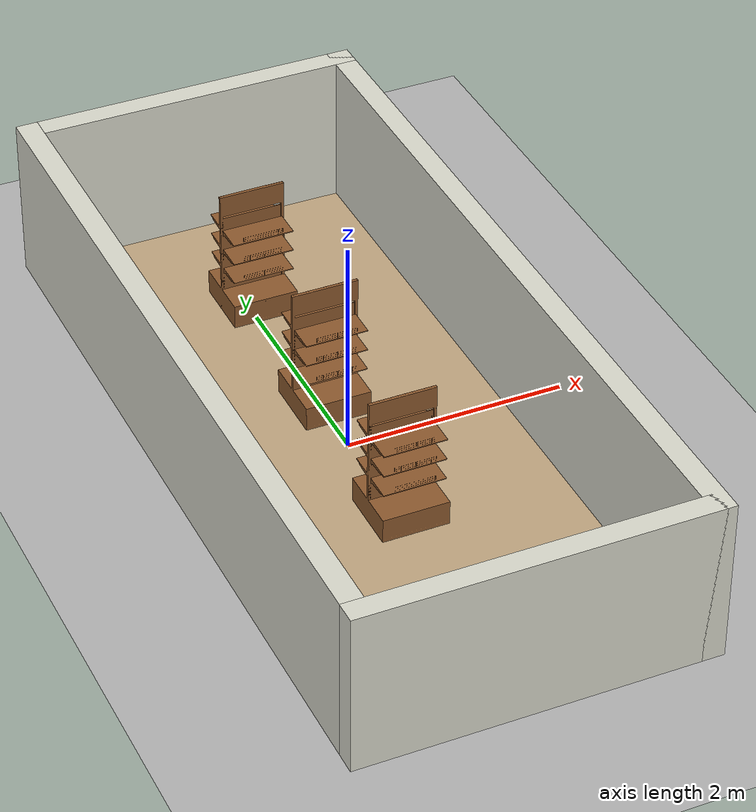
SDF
<sdf version="1.7">
 <world name="default">
  <plugin filename="gz-sim-physics-system" name="gz::sim::systems::Physics"/>
  <plugin filename="gz-sim-user-commands-system" name="gz::sim::systems::UserCommands"/>
  <plugin filename="gz-sim-scene-broadcaster-system" name="gz::sim::systems::SceneBroadcaster"/>
  <plugin filename="gz-sim-sensors-system" name="gz::sim::systems::Sensors">
   <render_engine>ogre2</render_engine>
  </plugin>
  <plugin filename="gz-sim-imu-system" name="gz::sim::systems::Imu"/>
  <light name="sun" type="directional">
   <pose>0 0 10 0 -0 0</pose>
   <diffuse>0.8 0.8 0.8 1</diffuse>
   <specular>0.2 0.2 0.2 1</specular>
   <attenuation>
    <range>1000</range>
    <constant>0.9</constant>
    <linear>0.01</linear>
    <quadratic>0.001</quadratic>
   </attenuation>
   <direction>-0.5 0.1 -0.9</direction>
   <spot><inner_angle>0</inner_angle><outer_angle>0</outer_angle><falloff>0</falloff></spot>
  </light>
  <model name="ground_plane">
   <static>1</static>
   <link name="link">
    <collision name="collision">
     <geometry><plane><normal>0 0 1</normal><size>100 100</size></plane></geometry>
     <surface>
      <contact><collide_bitmask>65535</collide_bitmask></contact>
      <friction><ode><mu>100</mu><mu2>50</mu2></ode></friction>
     </surface>
    </collision>
    <visual name="visual">
     <cast_shadows>0</cast_shadows>
     <geometry><plane><normal>0 0 1</normal><size>100 100</size></plane></geometry>
     <material>
      <ambient>0.3 0.3 0.3 1</ambient>
      <diffuse>0.7 0.7 0.7 1</diffuse>
      <specular>0.01 0.01 0.01 1</specular>
     </material>
    </visual>
   </link>
  </model>
  <gravity>0 0 -9.8</gravity>
  <magnetic_field>6e-06 2.3e-05 -4.2e-05</magnetic_field>
  <atmosphere type="adiabatic"/>
  <physics type="ode">
   <max_step_size>0.001</max_step_size>
   <real_time_factor>1</real_time_factor>
   <real_time_update_rate>1000</real_time_update_rate>
  </physics>
  <scene><ambient>0.4 0.4 0.4 1</ambient><background>0.7 0.7 0.7 1</background><shadows>1</shadows></scene>
  <audio><device>default</device></audio>
  <spherical_coordinates>
   <surface_model>EARTH_WGS84</surface_model>
   <latitude_deg>0</latitude_deg>
   <longitude_deg>0</longitude_deg>
   <elevation>0</elevation>
   <heading_deg>0</heading_deg>
  </spherical_coordinates>
  <model name="SupermarketWalls">
   <link name="Floor_0">
    <collision name="Floor_0_Collision">
     <geometry><box><size>3 7 0.1</size></box></geometry>
     <pose>0 0 0.05 0 -0 0</pose>
    </collision>
    <visual name="Floor_0_Visual">
     <pose>0 0 0.05 0 -0 0</pose>
     <geometry><box><size>3 7 0.1</size></box></geometry>
     <material>
      <ambient>0.35 0.30 0.22 1</ambient>
      <diffuse>0.75 0.65 0.50 1</diffuse>
      <specular>0.02 0.02 0.02 1</specular>
     </material>
     <meta><layer>0</layer></meta>
    </visual>
   </link>
   <link name="Wall_14">
    <collision name="Wall_14_Collision">
     <geometry><box><size>3.2 0.2 1.5</size></box></geometry>
     <pose>0 0 0.75 0 -0 0</pose>
    </collision>
    <visual name="Wall_14_Visual">
     <pose>0 0 0.75 0 -0 0</pose>
     <geometry><box><size>3.2 0.2 1.5</size></box></geometry>
     <material>
      <ambient>0.35 0.35 0.32 1</ambient>
      <diffuse>0.85 0.85 0.80 1</diffuse>
      <specular>0.02 0.02 0.02 1</specular>
     </material>
     <meta><layer>0</layer></meta>
    </visual>
    <pose>0 3.5 0 0 -0 0</pose>
   </link>
   <link name="Wall_17">
    <collision name="Wall_17_Collision">
     <geometry><box><size>7.2 0.2 1.5</size></box></geometry>
     <pose>0 0 0.75 0 -0 0</pose>
    </collision>
    <visual name="Wall_17_Visual">
     <pose>0 0 0.75 0 -0 0</pose>
     <geometry><box><size>7.2 0.2 1.5</size></box></geometry>
     <material>
      <ambient>0.35 0.35 0.32 1</ambient>
      <diffuse>0.85 0.85 0.80 1</diffuse>
      <specular>0.02 0.02 0.02 1</specular>
     </material>
     <meta><layer>0</layer></meta>
    </visual>
    <pose>1.5 0 0 0 -0 -1.5708</pose>
   </link>
   <link name="Wall_19">
    <collision name="Wall_19_Collision">
     <geometry><box><size>3.2 0.2 1.5</size></box></geometry>
     <pose>0 0 0.75 0 -0 0</pose>
    </collision>
    <visual name="Wall_19_Visual">
     <pose>0 0 0.75 0 -0 0</pose>
     <geometry><box><size>3.2 0.2 1.5</size></box></geometry>
     <material>
      <ambient>0.35 0.35 0.32 1</ambient>
      <diffuse>0.85 0.85 0.80 1</diffuse>
      <specular>0.02 0.02 0.02 1</specular>
     </material>
     <meta><layer>0</layer></meta>
    </visual>
    <pose>0 -3.5 0 0 -0 0</pose>
   </link>
   <link name="Wall_9">
    <collision name="Wall_9_Collision">
     <geometry><box><size>7.2 0.2 1.5</size></box></geometry>
     <pose>0 0 0.75 0 -0 0</pose>
    </collision>
    <visual name="Wall_9_Visual">
     <pose>0 0 0.75 0 -0 0</pose>
     <geometry><box><size>7.2 0.2 1.5</size></box></geometry>
     <material>
      <ambient>0.35 0.35 0.32 1</ambient>
      <diffuse>0.85 0.85 0.80 1</diffuse>
      <specular>0.02 0.02 0.02 1</specular>
     </material>
     <meta><layer>0</layer></meta>
    </visual>
    <pose>-1.5 0 0 0 -0 1.5708</pose>
   </link>
   <static>1</static>
  </model>
  <model name="markers_supermarket_real">
   <pose>2e-06 0.5 0.419995 8e-06 6e-06 0</pose>
   <link name="link">
    <inertial>
     <mass>1</mass>
     <inertia>
      <ixx>0.166667</ixx>
      <ixy>0</ixy>
      <ixz>0</ixz>
      <iyy>0.166667</iyy>
      <iyz>0</iyz>
      <izz>0.166667</izz>
     </inertia>
    </inertial>
    <visual name="visual">
     <geometry>
      <mesh>
       <uri>model://Supermarket/markers_supermarket_real/meshes/estanteria.stl</uri>
       <scale>0.001 0.001 0.001</scale>
      </mesh>
     </geometry>
     <material>
      <shader type="pixel"><normal_map>__default__</normal_map></shader>
      <ambient>0.25 0.15 0.08 1</ambient>
      <diffuse>0.55 0.35 0.18 1</diffuse>
      <specular>0.02 0.02 0.02 1</specular>
      <emissive>0 0 0 1</emissive>
     </material>
     <pose>-0.3 0.3 -0.3 1.58 -0 0</pose>
    </visual>
    <collision name="collision">
     <pose>0 0 0.23 0 -0 0</pose>
     <geometry><box><size>0.61 0.61 1.1</size></box></geometry>
     <surface>
      <friction>
       <ode><mu>1</mu><mu2>1</mu2><fdir1>0 0 0</fdir1><slip1>0</slip1><slip2>0</slip2></ode>
       <torsional>
        <coefficient>1</coefficient>
        <patch_radius>0</patch_radius>
        <surface_radius>0</surface_radius>
        <use_patch_radius>1</use_patch_radius>
        <ode><slip>0</slip></ode>
       </torsional>
      </friction>
      <bounce><restitution_coefficient>0</restitution_coefficient><threshold>1e+06</threshold></bounce>
      <contact>
       <collide_without_contact>0</collide_without_contact>
       <collide_without_contact_bitmask>1</collide_without_contact_bitmask>
       <collide_bitmask>1</collide_bitmask>
       <ode>
        <soft_cfm>0</soft_cfm>
        <soft_erp>0.2</soft_erp>
        <kp>1e+13</kp>
        <kd>1</kd>
        <max_vel>0.01</max_vel>
        <min_depth>0</min_depth>
       </ode>
       <bullet>
        <split_impulse>1</split_impulse>
        <split_impulse_penetration_threshold>-0.01</split_impulse_penetration_threshold>
        <soft_cfm>0</soft_cfm>
        <soft_erp>0.2</soft_erp>
        <kp>1e+13</kp>
        <kd>1</kd>
       </bullet>
      </contact>
     </surface>
    </collision>
   </link>
   <static>0</static>
   <pose>-0.35853 -0.234564 0 0 -0 0</pose>
  </model>
  <model name="markers_supermarket_real_clone">
   <pose>-0.026767 -1.1 0.420001 0 -4e-06 0</pose>
   <link name="link">
    <inertial>
     <mass>1</mass>
     <inertia>
      <ixx>0.166667</ixx>
      <ixy>0</ixy>
      <ixz>0</ixz>
      <iyy>0.166667</iyy>
      <iyz>0</iyz>
      <izz>0.166667</izz>
     </inertia>
    </inertial>
    <visual name="visual">
     <geometry>
      <mesh>
       <uri>model://Supermarket/markers_supermarket_real/meshes/estanteria.stl</uri>
       <scale>0.001 0.001 0.001</scale>
      </mesh>
     </geometry>
     <material>
      <shader type="pixel"><normal_map>__default__</normal_map></shader>
      <ambient>0.25 0.15 0.08 1</ambient>
      <diffuse>0.55 0.35 0.18 1</diffuse>
      <specular>0.02 0.02 0.02 1</specular>
      <emissive>0 0 0 1</emissive>
     </material>
     <pose>-0.3 0.3 -0.3 1.58 -0 0</pose>
    </visual>
    <collision name="collision">
     <pose>0 0 0.23 0 -0 0</pose>
     <geometry><box><size>0.61 0.61 1.1</size></box></geometry>
     <surface>
      <friction>
       <ode><mu>1</mu><mu2>1</mu2><fdir1>0 0 0</fdir1><slip1>0</slip1><slip2>0</slip2></ode>
       <torsional>
        <coefficient>1</coefficient>
        <patch_radius>0</patch_radius>
        <surface_radius>0</surface_radius>
        <use_patch_radius>1</use_patch_radius>
        <ode><slip>0</slip></ode>
       </torsional>
      </friction>
      <bounce><restitution_coefficient>0</restitution_coefficient><threshold>1e+06</threshold></bounce>
      <contact>
       <collide_without_contact>0</collide_without_contact>
       <collide_without_contact_bitmask>1</collide_without_contact_bitmask>
       <collide_bitmask>1</collide_bitmask>
       <ode>
        <soft_cfm>0</soft_cfm>
        <soft_erp>0.2</soft_erp>
        <kp>1e+13</kp>
        <kd>1</kd>
        <max_vel>0.01</max_vel>
        <min_depth>0</min_depth>
       </ode>
       <bullet>
        <split_impulse>1</split_impulse>
        <split_impulse_penetration_threshold>-0.01</split_impulse_penetration_threshold>
        <soft_cfm>0</soft_cfm>
        <soft_erp>0.2</soft_erp>
        <kp>1e+13</kp>
        <kd>1</kd>
       </bullet>
      </contact>
     </surface>
    </collision>
   </link>
   <static>0</static>
   <pose>-0.026766 -1.78143 0.42 -0 -0 -0</pose>
  </model>
  <model name="markers_supermarket_real_clone_0">
   <pose>0.012571 2.1 0.419996 4e-06 -8e-06 1e-06</pose>
   <link name="link">
    <inertial>
     <mass>1</mass>
     <inertia>
      <ixx>0.166667</ixx>
      <ixy>0</ixy>
      <ixz>0</ixz>
      <iyy>0.166667</iyy>
      <iyz>0</iyz>
      <izz>0.166667</izz>
     </inertia>
    </inertial>
    <visual name="visual">
     <geometry>
      <mesh>
       <uri>model://Supermarket/markers_supermarket_real/meshes/estanteria.stl</uri>
       <scale>0.001 0.001 0.001</scale>
      </mesh>
     </geometry>
     <material>
      <shader type="pixel"><normal_map>__default__</normal_map></shader>
      <ambient>0.25 0.15 0.08 1</ambient>
      <diffuse>0.55 0.35 0.18 1</diffuse>
      <specular>0.02 0.02 0.02 1</specular>
      <emissive>0 0 0 1</emissive>
     </material>
     <pose>-0.3 0.3 -0.3 1.58 -0 0</pose>
    </visual>
    <collision name="collision">
     <pose>0 0 0.23 0 -0 0</pose>
     <geometry><box><size>0.61 0.61 1.1</size></box></geometry>
     <surface>
      <friction>
       <ode><mu>1</mu><mu2>1</mu2><fdir1>0 0 0</fdir1><slip1>0</slip1><slip2>0</slip2></ode>
       <torsional>
        <coefficient>1</coefficient>
        <patch_radius>0</patch_radius>
        <surface_radius>0</surface_radius>
        <use_patch_radius>1</use_patch_radius>
        <ode><slip>0</slip></ode>
       </torsional>
      </friction>
      <bounce><restitution_coefficient>0</restitution_coefficient><threshold>1e+06</threshold></bounce>
      <contact>
       <collide_without_contact>0</collide_without_contact>
       <collide_without_contact_bitmask>1</collide_without_contact_bitmask>
       <collide_bitmask>1</collide_bitmask>
       <ode>
        <soft_cfm>0</soft_cfm>
        <soft_erp>0.2</soft_erp>
        <kp>1e+13</kp>
        <kd>1</kd>
        <max_vel>0.01</max_vel>
        <min_depth>0</min_depth>
       </ode>
       <bullet>
        <split_impulse>1</split_impulse>
        <split_impulse_penetration_threshold>-0.01</split_impulse_penetration_threshold>
        <soft_cfm>0</soft_cfm>
        <soft_erp>0.2</soft_erp>
        <kp>1e+13</kp>
        <kd>1</kd>
       </bullet>
      </contact>
     </surface>
    </collision>
   </link>
   <static>0</static>
   <pose>0.012573 2.32887 0.42 -0 -0 -0</pose>
  </model>
 </world>
</sdf>
